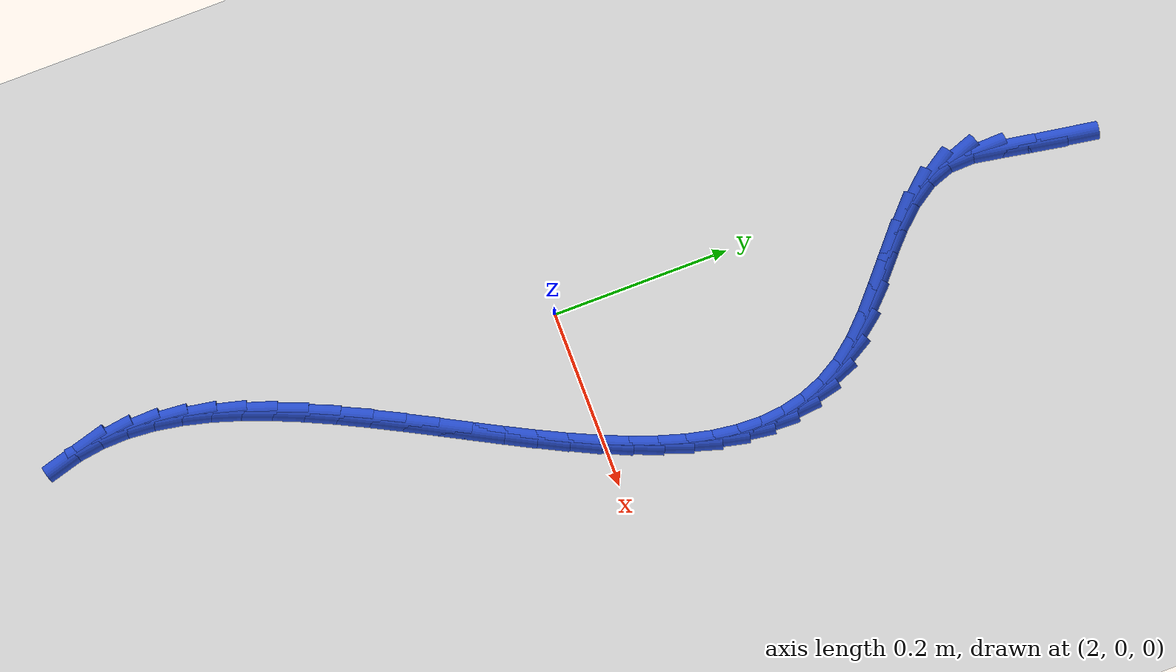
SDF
<sdf version="1.6">
 <world name="default">
  <model name="ground_plane">
   <static>1</static>
   <link name="link">
    <collision name="collision">
     <geometry><plane><normal>0 0 1</normal><size>100 100</size></plane></geometry>
     <surface><friction><ode><mu>100</mu><mu2>50</mu2></ode></friction></surface>
    </collision>
    <visual name="visual">
     <cast_shadows>0</cast_shadows>
     <geometry><plane><normal>0 0 1</normal><size>100 100</size></plane></geometry>
     <material>
      <script><uri>file://media/materials/scripts/gazebo.material</uri><name>Gazebo/WhiteGlow</name></script>
     </material>
    </visual>
   </link>
  </model>
  <model name="line">
   <link name="link_100">
    <pose>2.0127804755510317 0.587119913408195 0.01 0 1.57 1.4144117438937454</pose>
    <collision name="collision">
     <geometry><cylinder><radius>0.01</radius><length>0.08</length></cylinder></geometry>
    </collision>
    <visual name="visual">
     <material>
      <script><name>Gazebo/Blue</name><uri>file://media/materials/scripts/gazebo.material</uri></script>
     </material>
     <geometry><cylinder><radius>0.01</radius><length>0.08</length></cylinder></geometry>
    </visual>
   </link>
   <link name="link_101">
    <pose>2.0072215269533267 0.551863511314567 0.01 0 1.57 1.3944853144687042</pose>
    <collision name="collision">
     <geometry><cylinder><radius>0.01</radius><length>0.08</length></cylinder></geometry>
    </collision>
    <visual name="visual">
     <material>
      <script><name>Gazebo/Blue</name><uri>file://media/materials/scripts/gazebo.material</uri></script>
     </material>
     <geometry><cylinder><radius>0.01</radius><length>0.08</length></cylinder></geometry>
    </visual>
   </link>
   <link name="link_102">
    <pose>2.0012740454738136 0.5184808748477472 0.01 0 1.57 1.4051518582933649</pose>
    <collision name="collision">
     <geometry><cylinder><radius>0.01</radius><length>0.08</length></cylinder></geometry>
    </collision>
    <visual name="visual">
     <material>
      <script><name>Gazebo/Blue</name><uri>file://media/materials/scripts/gazebo.material</uri></script>
     </material>
     <geometry><cylinder><radius>0.01</radius><length>0.08</length></cylinder></geometry>
    </visual>
   </link>
   <link name="link_103">
    <pose>1.9960893519847014 0.4874675412518961 0.01 0 1.57 -1.5402359649732213</pose>
    <collision name="collision">
     <geometry><cylinder><radius>0.01</radius><length>0.08</length></cylinder></geometry>
    </collision>
    <visual name="visual">
     <material>
      <script><name>Gazebo/Blue</name><uri>file://media/materials/scripts/gazebo.material</uri></script>
     </material>
     <geometry><cylinder><radius>0.01</radius><length>0.08</length></cylinder></geometry>
    </visual>
   </link>
   <link name="link_104">
    <pose>1.9969624749358947 0.45890599719059944 0.01 0 1.57 -1.2296406317065611</pose>
    <collision name="collision">
     <geometry><cylinder><radius>0.01</radius><length>0.08</length></cylinder></geometry>
    </collision>
    <visual name="visual">
     <material>
      <script><name>Gazebo/Blue</name><uri>file://media/materials/scripts/gazebo.material</uri></script>
     </material>
     <geometry><cylinder><radius>0.01</radius><length>0.08</length></cylinder></geometry>
    </visual>
   </link>
   <link name="link_105">
    <pose>2.006317318165327 0.4325571255874145 0.01 0 1.57 -0.9887238100219239</pose>
    <collision name="collision">
     <geometry><cylinder><radius>0.01</radius><length>0.08</length></cylinder></geometry>
    </collision>
    <visual name="visual">
     <material>
      <script><name>Gazebo/Blue</name><uri>file://media/materials/scripts/gazebo.material</uri></script>
     </material>
     <geometry><cylinder><radius>0.01</radius><length>0.08</length></cylinder></geometry>
    </visual>
   </link>
   <link name="link_106">
    <pose>2.022491972639365 0.40798061179572853 0.01 0 1.57 -0.8325203542580724</pose>
    <collision name="collision">
     <geometry><cylinder><radius>0.01</radius><length>0.08</length></cylinder></geometry>
    </collision>
    <visual name="visual">
     <material>
      <script><name>Gazebo/Blue</name><uri>file://media/materials/scripts/gazebo.material</uri></script>
     </material>
     <geometry><cylinder><radius>0.01</radius><length>0.08</length></cylinder></geometry>
    </visual>
   </link>
   <link name="link_107">
    <pose>2.0436506749031147 0.3847275809873961 0.01 0 1.57 -0.7441118585724075</pose>
    <collision name="collision">
     <geometry><cylinder><radius>0.01</radius><length>0.08</length></cylinder></geometry>
    </collision>
    <visual name="visual">
     <material>
      <script><name>Gazebo/Blue</name><uri>file://media/materials/scripts/gazebo.material</uri></script>
     </material>
     <geometry><cylinder><radius>0.01</radius><length>0.08</length></cylinder></geometry>
    </visual>
   </link>
   <link name="link_108">
    <pose>2.067957661501684 0.36234915833427117 0.01 0 1.57 -0.7084712514834411</pose>
    <collision name="collision">
     <geometry><cylinder><radius>0.01</radius><length>0.08</length></cylinder></geometry>
    </collision>
    <visual name="visual">
     <material>
      <script><name>Gazebo/Blue</name><uri>file://media/materials/scripts/gazebo.material</uri></script>
     </material>
     <geometry><cylinder><radius>0.01</radius><length>0.08</length></cylinder></geometry>
    </visual>
   </link>
   <link name="link_109">
    <pose>2.0935771689801763 0.34039646900820864 0.01 0 1.57 -0.7192044833671358</pose>
    <collision name="collision">
     <geometry><cylinder><radius>0.01</radius><length>0.08</length></cylinder></geometry>
    </collision>
    <visual name="visual">
     <material>
      <script><name>Gazebo/Blue</name><uri>file://media/materials/scripts/gazebo.material</uri></script>
     </material>
     <geometry><cylinder><radius>0.01</radius><length>0.08</length></cylinder></geometry>
    </visual>
   </link>
   <link name="link_110">
    <pose>2.1186734338836986 0.3184206381810623 0.01 0 1.57 -0.7789932263470085</pose>
    <collision name="collision">
     <geometry><cylinder><radius>0.01</radius><length>0.08</length></cylinder></geometry>
    </collision>
    <visual name="visual">
     <material>
      <script><name>Gazebo/Blue</name><uri>file://media/materials/scripts/gazebo.material</uri></script>
     </material>
     <geometry><cylinder><radius>0.01</radius><length>0.08</length></cylinder></geometry>
    </visual>
   </link>
   <link name="link_111">
    <pose>2.141410692757358 0.2959727910246867 0.01 0 1.57 -0.8961722533705546</pose>
    <collision name="collision">
     <geometry><cylinder><radius>0.01</radius><length>0.08</length></cylinder></geometry>
    </collision>
    <visual name="visual">
     <material>
      <script><name>Gazebo/Blue</name><uri>file://media/materials/scripts/gazebo.material</uri></script>
     </material>
     <geometry><cylinder><radius>0.01</radius><length>0.08</length></cylinder></geometry>
    </visual>
   </link>
   <link name="link_112">
    <pose>2.160077550934978 0.27263362720427353 0.01 0 1.57 -1.044257659643109</pose>
    <collision name="collision">
     <geometry><cylinder><radius>0.01</radius><length>0.08</length></cylinder></geometry>
    </collision>
    <visual name="visual">
     <material>
      <script><name>Gazebo/Blue</name><uri>file://media/materials/scripts/gazebo.material</uri></script>
     </material>
     <geometry><cylinder><radius>0.01</radius><length>0.08</length></cylinder></geometry>
    </visual>
   </link>
   <link name="link_113">
    <pose>2.174230624896052 0.2482853753101304 0.01 0 1.57 -1.196534141106438</pose>
    <collision name="collision">
     <geometry><cylinder><radius>0.01</radius><length>0.08</length></cylinder></geometry>
    </collision>
    <visual name="visual">
     <material>
      <script><name>Gazebo/Blue</name><uri>file://media/materials/scripts/gazebo.material</uri></script>
     </material>
     <geometry><cylinder><radius>0.01</radius><length>0.08</length></cylinder></geometry>
    </visual>
   </link>
   <link name="link_114">
    <pose>2.1841674057869787 0.22298644151800492 0.01 0 1.57 -1.344589756408493</pose>
    <collision name="collision">
     <geometry><cylinder><radius>0.01</radius><length>0.08</length></cylinder></geometry>
    </collision>
    <visual name="visual">
     <material>
      <script><name>Gazebo/Blue</name><uri>file://media/materials/scripts/gazebo.material</uri></script>
     </material>
     <geometry><cylinder><radius>0.01</radius><length>0.08</length></cylinder></geometry>
    </visual>
   </link>
   <link name="link_115">
    <pose>2.1901946856937564 0.19679744373682193 0.01 0 1.57 -1.4812984246047787</pose>
    <collision name="collision">
     <geometry><cylinder><radius>0.01</radius><length>0.08</length></cylinder></geometry>
    </collision>
    <visual name="visual">
     <material>
      <script><name>Gazebo/Blue</name><uri>file://media/materials/scripts/gazebo.material</uri></script>
     </material>
     <geometry><cylinder><radius>0.01</radius><length>0.08</length></cylinder></geometry>
    </visual>
   </link>
   <link name="link_116">
    <pose>2.1926192567023834 0.1697789998755073 0.01 0 1.57 1.5394488677619182</pose>
    <collision name="collision">
     <geometry><cylinder><radius>0.01</radius><length>0.08</length></cylinder></geometry>
    </collision>
    <visual name="visual">
     <material>
      <script><name>Gazebo/Blue</name><uri>file://media/materials/scripts/gazebo.material</uri></script>
     </material>
     <geometry><cylinder><radius>0.01</radius><length>0.08</length></cylinder></geometry>
    </visual>
   </link>
   <link name="link_117">
    <pose>2.191747910898858 0.1419917278429859 0.01 0 1.57 1.436139577177392</pose>
    <collision name="collision">
     <geometry><cylinder><radius>0.01</radius><length>0.08</length></cylinder></geometry>
    </collision>
    <visual name="visual">
     <material>
      <script><name>Gazebo/Blue</name><uri>file://media/materials/scripts/gazebo.material</uri></script>
     </material>
     <geometry><cylinder><radius>0.01</radius><length>0.08</length></cylinder></geometry>
    </visual>
   </link>
   <link name="link_118">
    <pose>2.187887440369178 0.1134962455481829 0.01 0 1.57 1.3499518674104811</pose>
    <collision name="collision">
     <geometry><cylinder><radius>0.01</radius><length>0.08</length></cylinder></geometry>
    </collision>
    <visual name="visual">
     <material>
      <script><name>Gazebo/Blue</name><uri>file://media/materials/scripts/gazebo.material</uri></script>
     </material>
     <geometry><cylinder><radius>0.01</radius><length>0.08</length></cylinder></geometry>
    </visual>
   </link>
   <link name="link_119">
    <pose>2.1813446371993415 0.08435317090002306 0.01 0 1.57 1.2793602387619682</pose>
    <collision name="collision">
     <geometry><cylinder><radius>0.01</radius><length>0.08</length></cylinder></geometry>
    </collision>
    <visual name="visual">
     <material>
      <script><name>Gazebo/Blue</name><uri>file://media/materials/scripts/gazebo.material</uri></script>
     </material>
     <geometry><cylinder><radius>0.01</radius><length>0.08</length></cylinder></geometry>
    </visual>
   </link>
   <link name="link_120">
    <pose>2.172426293475347 0.05462312180743233 0.01 0 1.57 1.2224701805717104</pose>
    <collision name="collision">
     <geometry><cylinder><radius>0.01</radius><length>0.08</length></cylinder></geometry>
    </collision>
    <visual name="visual">
     <material>
      <script><name>Gazebo/Blue</name><uri>file://media/materials/scripts/gazebo.material</uri></script>
     </material>
     <geometry><cylinder><radius>0.01</radius><length>0.08</length></cylinder></geometry>
    </visual>
   </link>
   <link name="link_121">
    <pose>2.161439201283191 0.02436671617933558 0.01 0 1.57 1.177443972505386</pose>
    <collision name="collision">
     <geometry><cylinder><radius>0.01</radius><length>0.08</length></cylinder></geometry>
    </collision>
    <visual name="visual">
     <material>
      <script><name>Gazebo/Blue</name><uri>file://media/materials/scripts/gazebo.material</uri></script>
     </material>
     <geometry><cylinder><radius>0.01</radius><length>0.08</length></cylinder></geometry>
    </visual>
   </link>
   <link name="link_122">
    <pose>2.148690152708874 -0.006355428075342045 0.01 0 1.57 1.1426933007322444</pose>
    <collision name="collision">
     <geometry><cylinder><radius>0.01</radius><length>0.08</length></cylinder></geometry>
    </collision>
    <visual name="visual">
     <material>
      <script><name>Gazebo/Blue</name><uri>file://media/materials/scripts/gazebo.material</uri></script>
     </material>
     <geometry><cylinder><radius>0.01</radius><length>0.08</length></cylinder></geometry>
    </visual>
   </link>
   <link name="link_123">
    <pose>2.134485939838392 -0.03748269304767542 0.01 0 1.57 1.1169394088088371</pose>
    <collision name="collision">
     <geometry><cylinder><radius>0.01</radius><length>0.08</length></cylinder></geometry>
    </collision>
    <visual name="visual">
     <material>
      <script><name>Gazebo/Blue</name><uri>file://media/materials/scripts/gazebo.material</uri></script>
     </material>
     <geometry><cylinder><radius>0.01</radius><length>0.08</length></cylinder></geometry>
    </visual>
   </link>
   <link name="link_124">
    <pose>2.119133354757744 -0.06895446082873931 0.01 0 1.57 1.0992111893276275</pose>
    <collision name="collision">
     <geometry><cylinder><radius>0.01</radius><length>0.08</length></cylinder></geometry>
    </collision>
    <visual name="visual">
     <material>
      <script><name>Gazebo/Blue</name><uri>file://media/materials/scripts/gazebo.material</uri></script>
     </material>
     <geometry><cylinder><radius>0.01</radius><length>0.08</length></cylinder></geometry>
    </visual>
   </link>
   <link name="link_125">
    <pose>2.1029391895529277 -0.1007101135096094 0.01 0 1.57 1.0888207962146152</pose>
    <collision name="collision">
     <geometry><cylinder><radius>0.01</radius><length>0.08</length></cylinder></geometry>
    </collision>
    <visual name="visual">
     <material>
      <script><name>Gazebo/Blue</name><uri>file://media/materials/scripts/gazebo.material</uri></script>
     </material>
     <geometry><cylinder><radius>0.01</radius><length>0.08</length></cylinder></geometry>
    </visual>
   </link>
   <link name="link_126">
    <pose>2.0862102363099417 -0.13268903318135883 0.01 0 1.57 1.0853362282070038</pose>
    <collision name="collision">
     <geometry><cylinder><radius>0.01</radius><length>0.08</length></cylinder></geometry>
    </collision>
    <visual name="visual">
     <material>
      <script><name>Gazebo/Blue</name><uri>file://media/materials/scripts/gazebo.material</uri></script>
     </material>
     <geometry><cylinder><radius>0.01</radius><length>0.08</length></cylinder></geometry>
    </visual>
   </link>
   <link name="link_127">
    <pose>2.0692532871147833 -0.16483060193506324 0.01 0 1.57 1.0885593318762583</pose>
    <collision name="collision">
     <geometry><cylinder><radius>0.01</radius><length>0.08</length></cylinder></geometry>
    </collision>
    <visual name="visual">
     <material>
      <script><name>Gazebo/Blue</name><uri>file://media/materials/scripts/gazebo.material</uri></script>
     </material>
     <geometry><cylinder><radius>0.01</radius><length>0.08</length></cylinder></geometry>
    </visual>
   </link>
   <link name="link_128">
    <pose>2.0523751340534515 -0.19707420186179753 0.01 0 1.57 1.0985121929260904</pose>
    <collision name="collision">
     <geometry><cylinder><radius>0.01</radius><length>0.08</length></cylinder></geometry>
    </collision>
    <visual name="visual">
     <material>
      <script><name>Gazebo/Blue</name><uri>file://media/materials/scripts/gazebo.material</uri></script>
     </material>
     <geometry><cylinder><radius>0.01</radius><length>0.08</length></cylinder></geometry>
    </visual>
   </link>
   <link name="link_129">
    <pose>2.0358825692119433 -0.22935921505263632 0.01 0 1.57 1.115432165211858</pose>
    <collision name="collision">
     <geometry><cylinder><radius>0.01</radius><length>0.08</length></cylinder></geometry>
    </collision>
    <visual name="visual">
     <material>
      <script><name>Gazebo/Blue</name><uri>file://media/materials/scripts/gazebo.material</uri></script>
     </material>
     <geometry><cylinder><radius>0.01</radius><length>0.08</length></cylinder></geometry>
    </visual>
   </link>
   <link name="link_130">
    <pose>2.0200823846762583 -0.2616250235986547 0.01 0 1.57 1.1397740491208856</pose>
    <collision name="collision">
     <geometry><cylinder><radius>0.01</radius><length>0.08</length></cylinder></geometry>
    </collision>
    <visual name="visual">
     <material>
      <script><name>Gazebo/Blue</name><uri>file://media/materials/scripts/gazebo.material</uri></script>
     </material>
     <geometry><cylinder><radius>0.01</radius><length>0.08</length></cylinder></geometry>
    </visual>
   </link>
   <link name="link_131">
    <pose>2.0052813725323935 -0.2938110095909273 0.01 0 1.57 1.1722159292228047</pose>
    <collision name="collision">
     <geometry><cylinder><radius>0.01</radius><length>0.08</length></cylinder></geometry>
    </collision>
    <visual name="visual">
     <material>
      <script><name>Gazebo/Blue</name><uri>file://media/materials/scripts/gazebo.material</uri></script>
     </material>
     <geometry><cylinder><radius>0.01</radius><length>0.08</length></cylinder></geometry>
    </visual>
   </link>
   <link name="link_132">
    <pose>1.9917863248663459 -0.3258565551205298 0.01 0 1.57 1.2136617711911595</pose>
    <collision name="collision">
     <geometry><cylinder><radius>0.01</radius><length>0.08</length></cylinder></geometry>
    </collision>
    <visual name="visual">
     <material>
      <script><name>Gazebo/Blue</name><uri>file://media/materials/scripts/gazebo.material</uri></script>
     </material>
     <geometry><cylinder><radius>0.01</radius><length>0.08</length></cylinder></geometry>
    </visual>
   </link>
   <link name="link_133">
    <pose>1.9799040337641158 -0.3577010422785355 0.01 0 1.57 1.265227766378067</pose>
    <collision name="collision">
     <geometry><cylinder><radius>0.01</radius><length>0.08</length></cylinder></geometry>
    </collision>
    <visual name="visual">
     <material>
      <script><name>Gazebo/Blue</name><uri>file://media/materials/scripts/gazebo.material</uri></script>
     </material>
     <geometry><cylinder><radius>0.01</radius><length>0.08</length></cylinder></geometry>
    </visual>
   </link>
   <link name="link_134">
    <pose>1.9699412913117 -0.3892838531560198 0.01 0 1.57 1.3281893526535347</pose>
    <collision name="collision">
     <geometry><cylinder><radius>0.01</radius><length>0.08</length></cylinder></geometry>
    </collision>
    <visual name="visual">
     <material>
      <script><name>Gazebo/Blue</name><uri>file://media/materials/scripts/gazebo.material</uri></script>
     </material>
     <geometry><cylinder><radius>0.01</radius><length>0.08</length></cylinder></geometry>
    </visual>
   </link>
   <link name="link_135">
    <pose>1.962204889595097 -0.4205443698440578 0.01 0 1.57 1.4038520364591047</pose>
    <collision name="collision">
     <geometry><cylinder><radius>0.01</radius><length>0.08</length></cylinder></geometry>
    </collision>
    <visual name="visual">
     <material>
      <script><name>Gazebo/Blue</name><uri>file://media/materials/scripts/gazebo.material</uri></script>
     </material>
     <geometry><cylinder><radius>0.01</radius><length>0.08</length></cylinder></geometry>
    </visual>
   </link>
   <link name="link_136">
    <pose>1.957001620700305 -0.4514219744337241 0.01 0 1.57 1.4932973184228044</pose>
    <collision name="collision">
     <geometry><cylinder><radius>0.01</radius><length>0.08</length></cylinder></geometry>
    </collision>
    <visual name="visual">
     <material>
      <script><name>Gazebo/Blue</name><uri>file://media/materials/scripts/gazebo.material</uri></script>
     </material>
     <geometry><cylinder><radius>0.01</radius><length>0.08</length></cylinder></geometry>
    </visual>
   </link>
   <link name="link_137">
    <pose>1.9546382767133212 -0.4818560490160937 0.01 0 1.57 -1.544628731921394</pose>
    <collision name="collision">
     <geometry><cylinder><radius>0.01</radius><length>0.08</length></cylinder></geometry>
    </collision>
    <visual name="visual">
     <material>
      <script><name>Gazebo/Blue</name><uri>file://media/materials/scripts/gazebo.material</uri></script>
     </material>
     <geometry><cylinder><radius>0.01</radius><length>0.08</length></cylinder></geometry>
    </visual>
   </link>
   <link name="link_138">
    <pose>1.955421649720144 -0.5117859756822412 0.01 0 1.57 -1.4275025927794442</pose>
    <collision name="collision">
     <geometry><cylinder><radius>0.01</radius><length>0.08</length></cylinder></geometry>
    </collision>
    <visual name="visual">
     <material>
      <script><name>Gazebo/Blue</name><uri>file://media/materials/scripts/gazebo.material</uri></script>
     </material>
     <geometry><cylinder><radius>0.01</radius><length>0.08</length></cylinder></geometry>
    </visual>
   </link>
   <link name="link_139">
    <pose>1.9596585318067723 -0.5411511365232416 0.01 0 1.57 -1.2994006808776883</pose>
    <collision name="collision">
     <geometry><cylinder><radius>0.01</radius><length>0.08</length></cylinder></geometry>
    </collision>
    <visual name="visual">
     <material>
      <script><name>Gazebo/Blue</name><uri>file://media/materials/scripts/gazebo.material</uri></script>
     </material>
     <geometry><cylinder><radius>0.01</radius><length>0.08</length></cylinder></geometry>
    </visual>
   </link>
  </model>
 </world>
</sdf>
